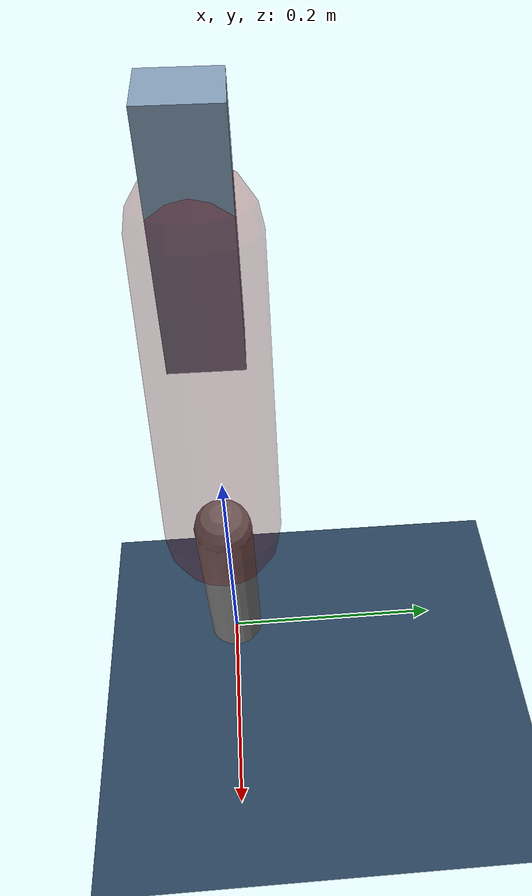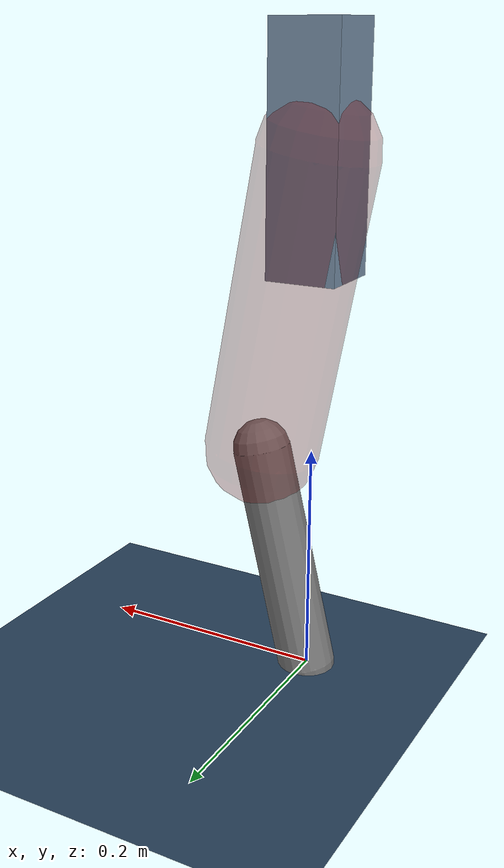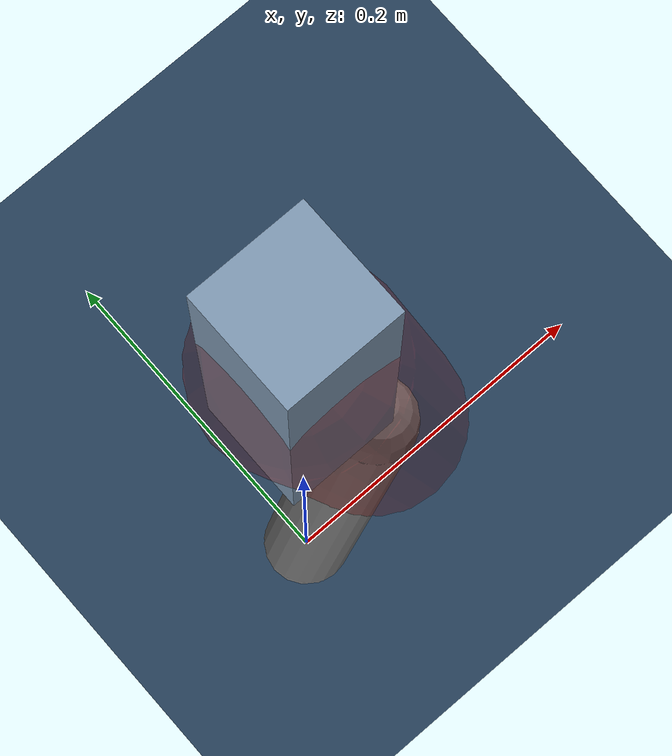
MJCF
<mujoco model="Hopper2D">
	<compiler inertiafromgeom="true" angle="radian" />
	<option timestep="0.001" integrator="implicit" cone="elliptic" solver="Newton" tolerance="1e-10" />

	<default>
		<geom contype="1" conaffinity="1" condim="3" friction="2 0.005 0.0001" solref="0.005 1" />
		<joint limited="true" damping="0.1" />
	</default>

	<asset>
		<texture name="skybox" type="skybox" builtin="gradient" rgb1=".4 .6 .8" rgb2="0 0 0" width="800" height="800" />
		<texture name="grid" type="2d" builtin="checker" rgb1=".1 .2 .3" rgb2=".2 .3 .4" width="300" height="300" mark="edge" markrgb=".2 .3 .4" />
		<material name="ground" texture="grid" texrepeat="1 1" texuniform="true" reflectance="0.1" />
		<material name="leg" rgba="0.5 0.6 0.7 1" />
	</asset>

	<worldbody>

		<geom name="floor" type="plane" size="5 5 0.25" material="ground" />

		<light directional="false" diffuse="0.8 0.8 0.8" specular="0.3 0.3 0.3" pos="0 0 2" dir="0 0 -1" />
		<light mode="targetbodycom" target="base" directional="false" diffuse="0.8 0.8 0.8" specular="0.3 0.3 0.3" pos="0 0 2" dir="0 0 -1" />

		<camera name="fixed" pos="0 -2 1" xyaxes="1 0 0 0 0 1" />
		<camera name="tracking" mode="trackcom" pos="0 -3 1" />

		<body name="root" pos="0 0 0.4485520574788162">
			<joint name="slide_x" type="slide" axis="1 0 0" range="-100 100" />
			<joint name="slide_z" type="slide" axis="0 0 1" range="0 10" />

			<body name="base" pos="0 0 0">
				<geom name="torso" type="box" size="0.03 0.03 0.1" mass="2.417" material="leg" />

				<body name="link1" pos="0 0 0" euler="0 1.3863371379270952 0">
					<joint type="hinge" axis="0 -1 0" pos="0 0 0" name="hinge1" limited="true" range="-3.14 3.14" stiffness="0" damping="0.1" />
					<geom name="thigh" type="capsule" fromto="0 0 0 0.2575621453236798 0 0" size="0.05" rgba="0.5 0 0 0.3" mass="0.8760615778415676" />

					<body name="link2" pos="0.2575621453236798 0 0" euler="0 0.4217192797244171 0">
						<joint type="hinge" axis="0 -1 0" pos="0 0 0" name="hinge2" limited="true" range="-3.14 3.14" stiffness="0" damping="0.1" />
						<geom name="shank" type="capsule" fromto="0 0 0 0.2009899121551364 0 0" size="0.025" mass="0.4016919297241091" />

					</body>
				</body>
			</body>
		</body>
	</worldbody>

	<actuator>
		<motor name="torque1" joint="hinge1" ctrlrange="-73.78273243309751 73.78273243309751" ctrllimited="true" gear="1" />
		<motor name="torque2" joint="hinge2" ctrlrange="-81.97675379413056 81.97675379413056" ctrllimited="true" gear="1" />
	</actuator>
</mujoco>
